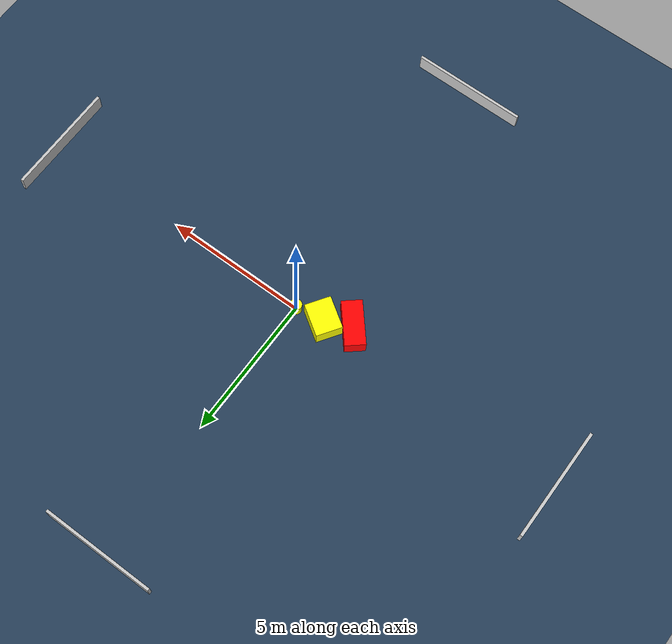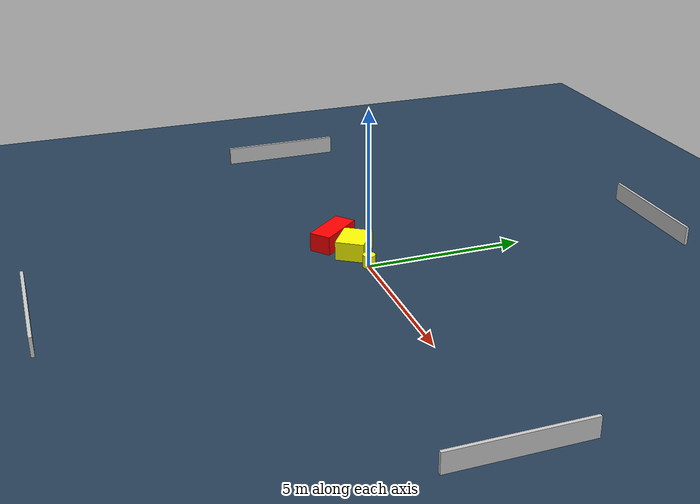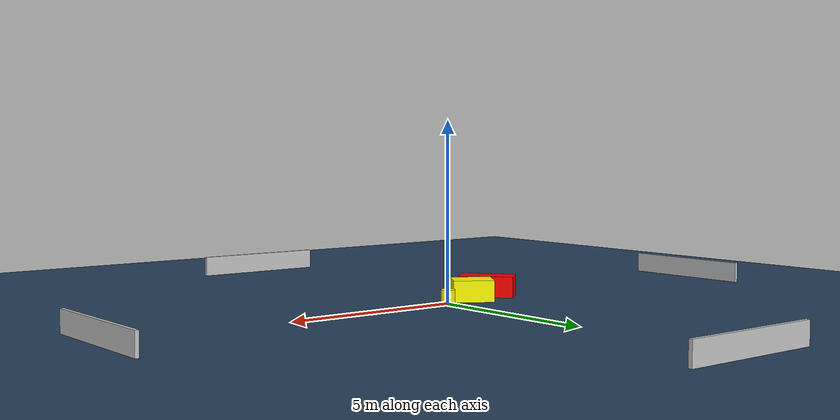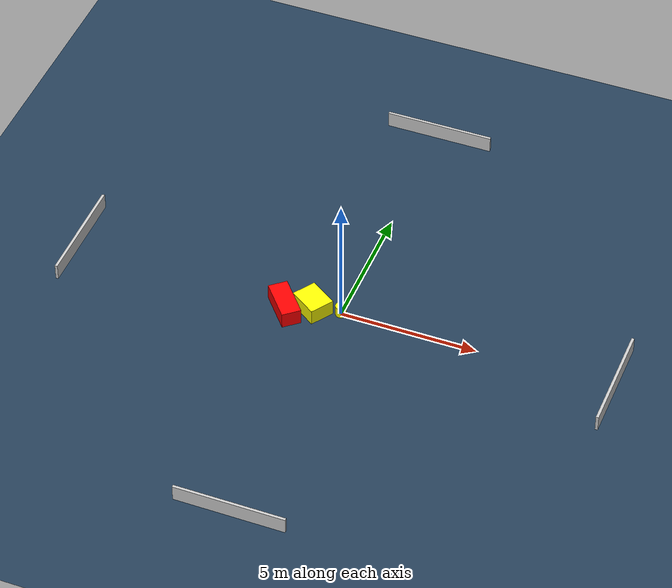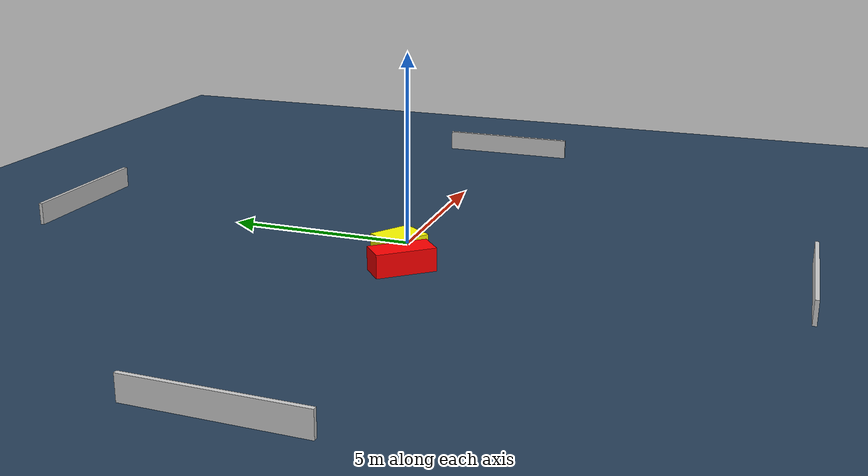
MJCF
<?xml version="1.0" ?>
<mujoco model="generated_environment">
  <option timestep="0.01" integrator="RK4" cone="elliptic"/>
  <default>
    <geom density="1"/>
  </default>
  <asset>
    <texture builtin="gradient" height="3072" name="skybox" rgb1="0.3 0.5 0.7" rgb2="0 0 0" type="skybox" width="512"/>
    <texture builtin="checker" height="300" name="groundplane" rgb1="0.2 0.3 0.4" rgb2="0.1 0.2 0.3" type="2d" width="300"/>
    <material name="groundplane" reflectance="0.2" texrepeat="5 5" texture="groundplane"/>
  </asset>
  <worldbody>
    <light dir="0 0 -1" directional="true" pos="0 0 1.5"/>
    <geom condim="3" friction="0.5 0.005 0.001" material="groundplane" name="floor" pos="0 0 0" size="0 0 0.05" type="plane"/>
    <body name="walls">
      <geom name="wall_1" condim="4" pos="-10.0 0.0 0.3" rgba="0.800000011920929 0.800000011920929 0.800000011920929 1.0" size="0.05 2.0 0.3" type="box"/>
      <geom name="wall_2" condim="4" pos="10.0 0.0 0.3" rgba="0.800000011920929 0.800000011920929 0.800000011920929 1.0" size="0.05 2.0 0.3" type="box"/>
      <geom name="wall_3" condim="4" pos="0.0 -10.0 0.3" rgba="0.800000011920929 0.800000011920929 0.800000011920929 1.0" size="2.0 0.05 0.3" type="box"/>
      <geom name="wall_4" condim="4" pos="0.0 10.0 0.3" rgba="0.800000011920929 0.800000011920929 0.800000011920929 1.0" size="2.0 0.05 0.3" type="box"/>
    </body>
    <body name="robot">
      <joint name="joint_x" type="slide" pos="0 0 0" axis="1 0 0"/>
      <joint name="joint_y" type="slide" pos="0 0 0" axis="0 1 0"/>
      <geom name="robot" type="cylinder" pos="0.0 0.0 0.2" size="0.2 0.2 0.0" mass="5.0" friction="1.0 0.005 0.0001" condim="4" rgba="1.0 1.0 0.0 1.0"/>
    </body>
    <body name="obstacle_1_movable">
      <geom name="obstacle_1_movable" condim="4" pos="-0.9937977499874202 -0.144056568505334 0.3" euler="0 0 236.3019495186593" friction="0.0 0.005 0.001" rgba="1.0 1.0 0.0 1.0" size="0.4567992228388194 0.5698460936994654 0.3" type="box" mass="0.1"/>
      <joint type="free"/>
    </body>
    <body name="obstacle_2_static">
      <geom name="obstacle_2_static" condim="4" pos="-1.9021772169704532 -0.5433665637221047 0.3" euler="0 0 220.30261429649914" friction="0.0 0.005 0.001" rgba="1.0 0.0 0.0 1.0" size="0.35333736135120797 0.7741573851913599 0.3" type="box"/>
    </body>
  </worldbody>
  <actuator>
    <motor name="actuator_x" joint="joint_x" gear="1" ctrlrange="-1 1"/>
    <motor name="actuator_y" joint="joint_y" gear="1" ctrlrange="-1 1"/>
  </actuator>
</mujoco>
